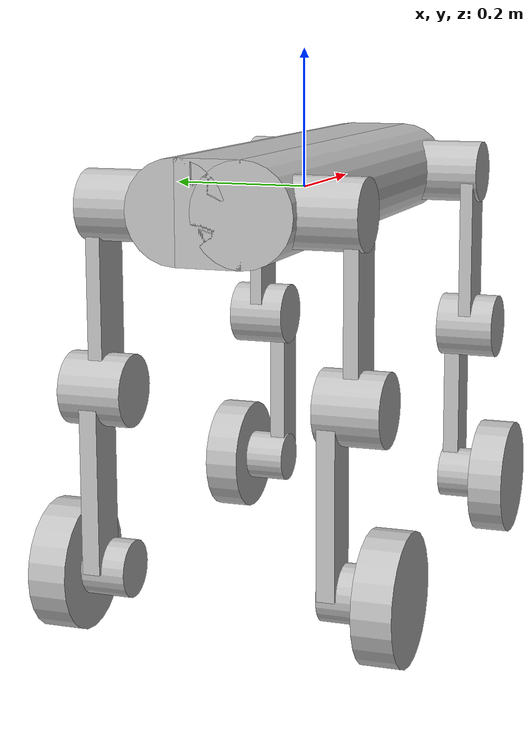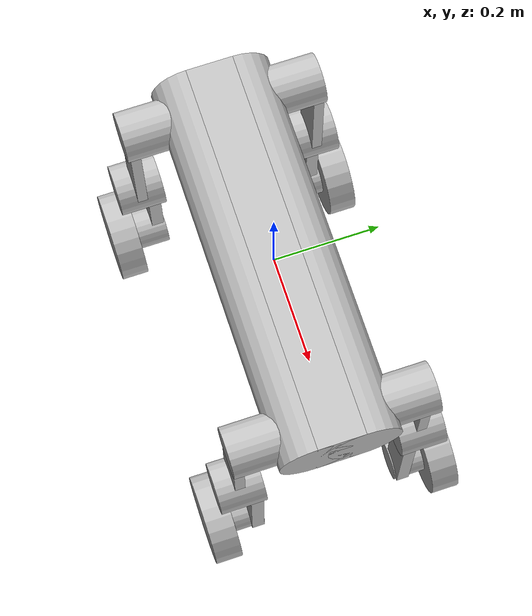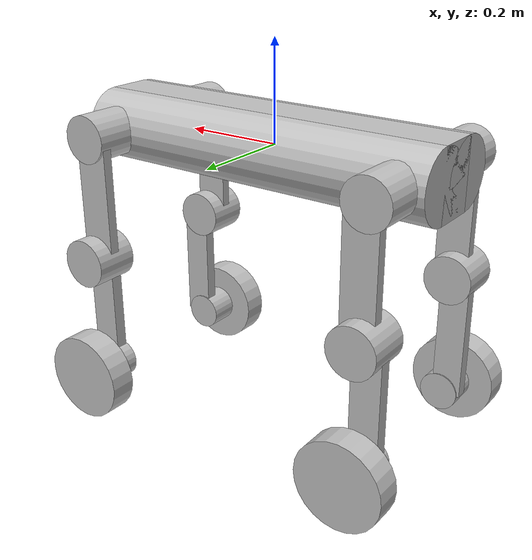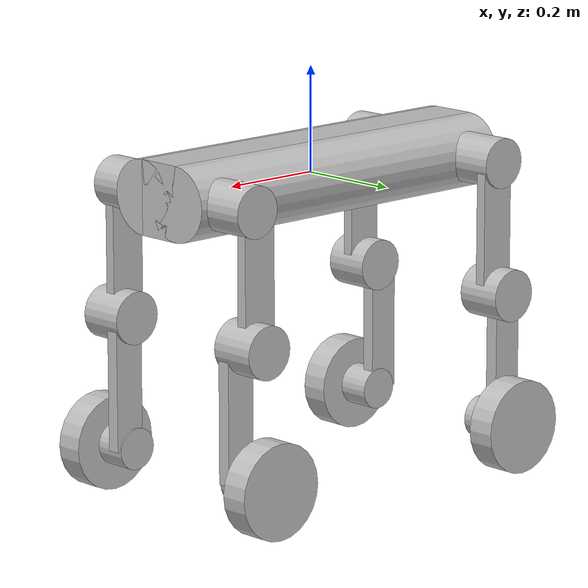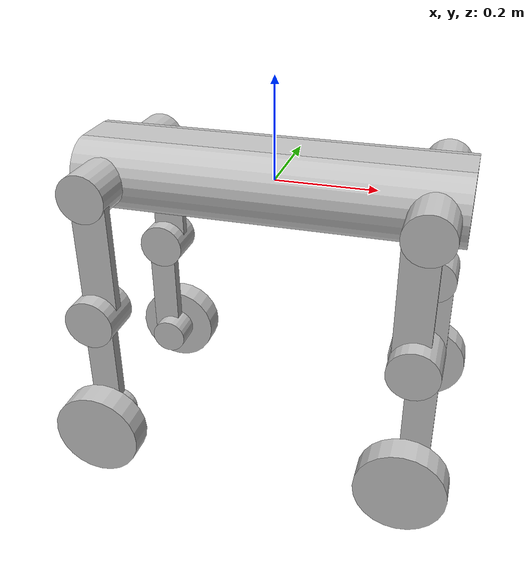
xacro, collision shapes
<?xml version="1.0"?>
<robot name="M20" xmlns:xacro="http://www.ros.org/wiki/xacro">
  <!-- 引入官方 M20 URDF 作为唯一内容 -->
  <xacro:include filename="$(find m20_official_description)/urdf/m20_official.urdf"/>
</robot>

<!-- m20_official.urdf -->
<robot name="M20">
    <!-- ===== 底盘 base_link ===== -->
    <link name="base_link">
        <inertial>
            <origin xyz="0.00355105878308153 0.0016507579200937 -0.00346462146571654" rpy="0 0 0"/>
            <mass value="15.882"/>
            <inertia ixx="0.0880787" ixy="0.001396" ixz="0.000111" iyy="0.533816" iyz="0.000519" izz="0.563915"/>
        </inertial>
        <visual>
            <origin xyz="0 0 0" rpy="0 0 0"/>
            <geometry>
                <mesh filename="package://m20_official_description/meshes/base_link.STL"/>
            </geometry>
            <material name="">
                <color rgba="0.752941176470588 0.752941176470588 0.752941176470588 1"/>
            </material>
        </visual>
        <collision>
            <origin xyz="0 0 0" rpy="0 0 0"/>
            <geometry>
                <box size="0.75 0.09 0.14"/>
            </geometry>
        </collision>
        <collision>
            <origin xyz="0 0.045 0" rpy="0 1.57079632 0"/>
            <geometry>
                <cylinder length="0.75" radius="0.07"/>
            </geometry>
        </collision>
        <collision>
            <origin xyz="0 -0.045 0" rpy="0 1.57079632 0"/>
            <geometry>
                <cylinder length="0.75" radius="0.07"/>
            </geometry>
        </collision>
    </link>
    <!-- ===== 左前腿：髋关节横滚 hipx ===== -->
    <link name="fl_hipx">
        <inertial>
            <origin xyz="-0.0111893129496933 0.00891693461032669 0.000405665689861192" rpy="0 0 0"/>
            <mass value="0.261359958476582"/>
            <inertia ixx="0.000186" ixy="0.000025" ixz="-0.000012" iyy="0.000371" iyz="-0.000008" izz="0.000288"/>
        </inertial>
        <visual>
            <origin xyz="0 0 0" rpy="0 0 0"/>
            <geometry>
                <mesh filename="package://m20_official_description/meshes/fl_hipx.STL"/>
            </geometry>
            <material name="">
                <color rgba="0.752941176470588 0.752941176470588 0.752941176470588 1"/>
            </material>
        </visual>
        <collision>
            <origin xyz="0 0.055 0" rpy="1.57079632 0 0"/>
            <geometry>
                <cylinder length="0.14" radius="0.048"/>
            </geometry>
        </collision>
    </link>
    <joint name="fl_hipx_joint" type="revolute">
        <origin xyz="0.3141 0.0685 0" rpy="0 0 0"/>
        <parent link="base_link"/>
        <child link="fl_hipx"/>
        <axis xyz="-1 0 0"/>
        <limit lower="-0.611" upper="0.436" effort="76.4" velocity="22.4"/>
    </joint>
    <!-- ===== 左前腿：髋关节俯仰 hipy ===== -->
    <link name="fl_hipy">
        <inertial>
            <origin xyz="-0.00199374763010413 0.0984389609045802 -0.130663565833427" rpy="0 0 0"/>
            <mass value="2.493"/>
            <inertia ixx="0.038859" ixy="-0.000023" ixz="-0.000037" iyy="0.038040" iyz="-0.005985" izz="0.003848"/>
        </inertial>
        <visual>
            <origin xyz="0 0 0" rpy="0 0 0"/>
            <geometry>
                <mesh filename="package://m20_official_description/meshes/fl_hipy.STL"/>
            </geometry>
            <material name="">
                <color rgba="0.752941176470588 0.752941176470588 0.752941176470588 1"/>
            </material>
        </visual>
        <collision>
            <origin xyz="-0.01 0.11 -0.125" rpy="0 0 0"/>
            <geometry>
                <box size="0.07 0.02 0.25"/>
            </geometry>
        </collision>
        <collision>
            <origin xyz="0 0.11 -0.25" rpy="1.57079632 0 0"/>
            <geometry>
                <cylinder length="0.09" radius="0.05"/>
            </geometry>
        </collision>
    </link>
    <joint name="fl_hipy_joint" type="revolute">
        <origin xyz="0 0 0" rpy="0 0 0"/>
        <parent link="fl_hipx"/>
        <child link="fl_hipy"/>
        <axis xyz="0 -1 0"/>
        <limit lower="-2.583" upper="2.286" effort="76.4" velocity="22.4"/>
    </joint>
    <!-- ===== 左前腿：膝关节 knee ===== -->
    <link name="fl_knee">
        <inertial>
            <origin xyz="0.00341916513259743 0.0026912421076368 -0.181265498605881" rpy="0 0 0"/>
            <mass value="1.26"/>
            <inertia ixx="0.012936" ixy="-0.000053" ixz="0.000226" iyy="0.013123" iyz="-0.001681" izz="0.001682"/>
        </inertial>
        <visual>
            <origin xyz="0 0 0" rpy="0 0 0"/>
            <geometry>
                <mesh filename="package://m20_official_description/meshes/fl_knee.STL"/>
            </geometry>
            <material name="">
                <color rgba="0.752941176470588 0.752941176470588 0.752941176470588 1"/>
            </material>
        </visual>
        <collision>
            <origin xyz="0.015 -0.015 -0.125" rpy="0 0 0"/>
            <geometry>
                <box size="0.06 0.025 0.25"/>
            </geometry>
        </collision>
        <collision>
            <origin xyz="0 0.02 -0.25" rpy="1.57079632 0 0"/>
            <geometry>
                <cylinder length="0.1" radius="0.04"/>
            </geometry>
        </collision>
    </link>
    <joint name="fl_knee_joint" type="revolute">
        <origin xyz="0 0.0984 -0.25" rpy="0 0 0"/>
        <parent link="fl_hipy"/>
        <child link="fl_knee"/>
        <axis xyz="0 -1 0"/>
        <limit lower="-2.792" upper="2.809" effort="76.4" velocity="22.4"/>
    </joint>
    <!-- ===== 左前腿：轮子 wheel ===== -->
    <link name="fl_wheel">
        <inertial>
            <origin xyz="-3.11398454355682E-07 0.000279001520740008 5.70329233673394E-07" rpy="0 0 0"/>
            <mass value="0.638"/>
            <inertia ixx="0.001535" ixy="0.0" ixz="0.0" iyy="0.002853" iyz="0.0" izz="0.001535"/>
        </inertial>
        <visual>
            <origin xyz="0 0 0" rpy="0 0 0"/>
            <geometry>
                <mesh filename="package://m20_official_description/meshes/fl_wheel.STL"/>
            </geometry>
            <material name="">
                <color rgba="0.752941176470588 0.752941176470588 0.752941176470588 1"/>
            </material>
        </visual>
        <collision>
            <origin xyz="0 0 0" rpy="1.57079632 0 0"/>
            <geometry>
                <cylinder length="0.054" radius="0.09"/>
            </geometry>
        </collision>
    </link>
    <joint name="fl_wheel_joint" type="continuous">
        <origin xyz="0 0.059676 -0.25" rpy="0 0 0"/>
        <parent link="fl_knee"/>
        <child link="fl_wheel"/>
        <axis xyz="0 -1 0"/>
        <limit effort="21.6" velocity="79.3"/>
    </joint>
    <!-- ===== 右前腿：fr_hipx / fr_hipy / fr_knee / fr_wheel（与左前对称） ===== -->
    <link name="fr_hipx">
        <inertial>
            <origin xyz="-0.0110900940309543 -0.0087503473771439 0.000521421017057358" rpy="0 0 0"/>
            <mass value="0.261359958476582"/>
            <inertia ixx="0.000186" ixy="-0.000026" ixz="-0.000012" iyy="0.000371" iyz="0.000008" izz="0.000288"/>
        </inertial>
        <visual>
            <origin xyz="0 0 0" rpy="0 0 0"/>
            <geometry>
                <mesh filename="package://m20_official_description/meshes/fr_hipx.STL"/>
            </geometry>
            <material name="">
                <color rgba="0.752941176470588 0.752941176470588 0.752941176470588 1"/>
            </material>
        </visual>
        <collision>
            <origin xyz="0 -0.055 0" rpy="1.57079632 0 0"/>
            <geometry>
                <cylinder length="0.14" radius="0.048"/>
            </geometry>
        </collision>
    </link>
    <joint name="fr_hipx_joint" type="revolute">
        <origin xyz="0.3141 -0.0685 0" rpy="0 0 0"/>
        <parent link="base_link"/>
        <child link="fr_hipx"/>
        <axis xyz="-1 0 0"/>
        <limit lower="-0.436" upper="0.611" effort="76.4" velocity="22.4"/>
    </joint>
    <link name="fr_hipy">
        <inertial>
            <origin xyz="-0.00229991904853988 -0.0989709441053532 -0.130925037640537" rpy="0 0 0"/>
            <mass value="2.493"/>
            <inertia ixx="0.039277" ixy="0.000005" ixz="-0.000063" iyy="0.038485" iyz="0.005970" izz="0.003921"/>
        </inertial>
        <visual>
            <origin xyz="0 0 0" rpy="0 0 0"/>
            <geometry>
                <mesh filename="package://m20_official_description/meshes/fr_hipy.STL"/>
            </geometry>
            <material name="">
                <color rgba="0.752941176470588 0.752941176470588 0.752941176470588 1"/>
            </material>
        </visual>
        <collision>
            <origin xyz="-0.01 -0.11 -0.125" rpy="0 0 0"/>
            <geometry>
                <box size="0.07 0.02 0.25"/>
            </geometry>
        </collision>
        <collision>
            <origin xyz="0 -0.11 -0.25" rpy="1.57079632 0 0"/>
            <geometry>
                <cylinder length="0.09" radius="0.05"/>
            </geometry>
        </collision>
    </link>
    <joint name="fr_hipy_joint" type="revolute">
        <origin xyz="0 0 0" rpy="0 0 0"/>
        <parent link="fr_hipx"/>
        <child link="fr_hipy"/>
        <axis xyz="0 -1 0"/>
        <limit lower="-2.583" upper="2.286" effort="76.4" velocity="22.4"/>
    </joint>
    <link name="fr_knee">
        <inertial>
            <origin xyz="0.0035494546955584 -0.002478843181213 -0.180089236444296" rpy="0 0 0"/>
            <mass value="1.26"/>
            <inertia ixx="0.012936" ixy="0.000053" ixz="0.000226" iyy="0.013123" iyz="0.001681" izz="0.001283"/>
        </inertial>
        <visual>
            <origin xyz="0 0 0" rpy="0 0 0"/>
            <geometry>
                <mesh filename="package://m20_official_description/meshes/fr_knee.STL"/>
            </geometry>
            <material name="">
                <color rgba="0.752941176470588 0.752941176470588 0.752941176470588 1"/>
            </material>
        </visual>
        <collision>
            <origin xyz="0.015 0.015 -0.125" rpy="0 0 0"/>
            <geometry>
                <box size="0.06 0.025 0.25"/>
            </geometry>
        </collision>
        <collision>
            <origin xyz="0 -0.02 -0.25" rpy="1.57079632 0 0"/>
            <geometry>
                <cylinder length="0.1" radius="0.04"/>
            </geometry>
        </collision>
    </link>
    <joint name="fr_knee_joint" type="revolute">
        <origin xyz="0 -0.0984 -0.25" rpy="0 0 0"/>
        <parent link="fr_hipy"/>
        <child link="fr_knee"/>
        <axis xyz="0 -1 0"/>
        <limit lower="-2.792" upper="2.809" effort="76.4" velocity="22.4"/>
    </joint>
    <link name="fr_wheel">
        <inertial>
            <origin xyz="-6.4732687427016E-07 -0.000279012463466427 -4.62420470803693E-08" rpy="0 0 0"/>
            <mass value="0.638"/>
            <inertia ixx="0.001535" ixy="0.0" ixz="0.0" iyy="0.002853" iyz="0.0" izz="0.001535"/>
        </inertial>
        <visual>
            <origin xyz="0 0 0" rpy="0 0 0"/>
            <geometry>
                <mesh filename="package://m20_official_description/meshes/fr_wheel.STL"/>
            </geometry>
            <material name="">
                <color rgba="0.752941176470588 0.752941176470588 0.752941176470588 1"/>
            </material>
        </visual>
        <collision>
            <origin xyz="0 0 0" rpy="1.57079632 0 0"/>
            <geometry>
                <cylinder length="0.054" radius="0.09"/>
            </geometry>
        </collision>
    </link>
    <joint name="fr_wheel_joint" type="continuous">
        <origin xyz="0 -0.059676 -0.25" rpy="0 0 0"/>
        <parent link="fr_knee"/>
        <child link="fr_wheel"/>
        <axis xyz="0 -1 0"/>
        <limit effort="21.6" velocity="79.3"/>
    </joint>
    <!-- ===== 左后腿：hl_hipx / hl_hipy / hl_knee / hl_wheel（与左前对称，位于 -X 侧） ===== -->
    <link name="hl_hipx">
        <inertial>
            <origin xyz="0.0110900940233134 0.00875014035040743 0.000524883746291591" rpy="0 0 0"/>
            <mass value="0.261359958476582"/>
            <inertia ixx="0.000186" ixy="-0.000025" ixz="0.000012" iyy="0.000371" iyz="-0.000008" izz="0.000288"/>
        </inertial>
        <visual>
            <origin xyz="0 0 0" rpy="0 0 0"/>
            <geometry>
                <mesh filename="package://m20_official_description/meshes/hl_hipx.STL"/>
            </geometry>
            <material name="">
                <color rgba="0.752941176470588 0.752941176470588 0.752941176470588 1"/>
            </material>
        </visual>
        <collision>
            <origin xyz="0 0.055 0" rpy="1.57079632 0 0"/>
            <geometry>
                <cylinder length="0.14" radius="0.048"/>
            </geometry>
        </collision>
    </link>
    <joint name="hl_hipx_joint" type="revolute">
        <origin xyz="-0.3141 0.0685 0" rpy="0 0 0"/>
        <parent link="base_link"/>
        <child link="hl_hipx"/>
        <axis xyz="-1 0 0"/>
        <limit lower="-0.611" upper="0.436" effort="76.4" velocity="22.4"/>
    </joint>
    <link name="hl_hipy">
        <inertial>
            <origin xyz="0.00204343366218146 0.0990227473833045 -0.13069726691312" rpy="0 0 0"/>
            <mass value="2.493"/>
            <inertia ixx="0.039361" ixy="0.000029" ixz="0.000009" iyy="0.038554" iyz="-0.006001" izz="0.003914"/>
        </inertial>
        <visual>
            <origin xyz="0 0 0" rpy="0 0 0"/>
            <geometry>
                <mesh filename="package://m20_official_description/meshes/hl_hipy.STL"/>
            </geometry>
            <material name="">
                <color rgba="0.752941176470588 0.752941176470588 0.752941176470588 1"/>
            </material>
        </visual>
        <collision>
            <origin xyz="0.01 0.11 -0.125" rpy="0 0 0"/>
            <geometry>
                <box size="0.07 0.02 0.25"/>
            </geometry>
        </collision>
        <collision>
            <origin xyz="0 0.11 -0.25" rpy="1.57079632 0 0"/>
            <geometry>
                <cylinder length="0.09" radius="0.05"/>
            </geometry>
        </collision>
    </link>
    <joint name="hl_hipy_joint" type="revolute">
        <origin xyz="0 0 0" rpy="0 0 0"/>
        <parent link="hl_hipx"/>
        <child link="hl_hipy"/>
        <axis xyz="0 -1 0"/>
        <limit lower="-2.286" upper="2.583" effort="76.4" velocity="22.4"/>
    </joint>
    <link name="hl_knee">
        <inertial>
            <origin xyz="-0.00354945209738589 0.00247884637205834 -0.180089257150601" rpy="0 0 0"/>
            <mass value="1.26"/>
            <inertia ixx="0.012936" ixy="0.000053" ixz="-0.000226" iyy="0.013123" iyz="-0.001681" izz="0.001283"/>
        </inertial>
        <visual>
            <origin xyz="0 0 0" rpy="0 0 0"/>
            <geometry>
                <mesh filename="package://m20_official_description/meshes/hl_knee.STL"/>
            </geometry>
            <material name="">
                <color rgba="0.752941176470588 0.752941176470588 0.752941176470588 1"/>
            </material>
        </visual>
        <collision>
            <origin xyz="-0.015 0.015 -0.125" rpy="0 0 0"/>
            <geometry>
                <box size="0.06 0.025 0.25"/>
            </geometry>
        </collision>
        <collision>
            <origin xyz="0 0.02 -0.25" rpy="1.57079632 0 0"/>
            <geometry>
                <cylinder length="0.1" radius="0.04"/>
            </geometry>
        </collision>
    </link>
    <joint name="hl_knee_joint" type="revolute">
        <origin xyz="0 0.0984 -0.25" rpy="0 0 0"/>
        <parent link="hl_hipy"/>
        <child link="hl_knee"/>
        <axis xyz="0 -1 0"/>
        <limit lower="-2.809" upper="2.792" effort="76.4" velocity="22.4"/>
    </joint>
    <link name="hl_wheel">
        <inertial>
            <origin xyz="-6.07889369508285E-07 0.000279009097070765 2.10489879304276E-07" rpy="0 0 0"/>
            <mass value="0.638"/>
            <inertia ixx="0.001535" ixy="0.0" ixz="0.0" iyy="0.002853" iyz="0.0" izz="0.001535"/>
        </inertial>
        <visual>
            <origin xyz="0 0 0" rpy="0 0 0"/>
            <geometry>
                <mesh filename="package://m20_official_description/meshes/hl_wheel.STL"/>
            </geometry>
            <material name="">
                <color rgba="0.752941176470588 0.752941176470588 0.752941176470588 1"/>
            </material>
        </visual>
        <collision>
            <origin xyz="0 0 0" rpy="1.57079632 0 0"/>
            <geometry>
                <cylinder length="0.054" radius="0.09"/>
            </geometry>
        </collision>
    </link>
    <joint name="hl_wheel_joint" type="continuous">
        <origin xyz="0 0.059676 -0.25" rpy="0 0 0"/>
        <parent link="hl_knee"/>
        <child link="hl_wheel"/>
        <axis xyz="0 -1 0"/>
        <limit effort="21.6" velocity="79.3"/>
    </joint>
    <!-- ===== 右后腿：hr_hipx / hr_hipy / hr_knee / hr_wheel（与右前对称，位于 -X 侧） ===== -->
    <link name="hr_hipx">
        <inertial>
            <origin xyz="0.0110901558226165 -0.00875011717083631 0.000524936954718227" rpy="0 0 0"/>
            <mass value="0.261359958476582"/>
            <inertia ixx="0.000186" ixy="0.000025" ixz="0.000012" iyy="0.000371" iyz="0.000008" izz="0.000288"/>
        </inertial>
        <visual>
            <origin xyz="0 0 0" rpy="0 0 0"/>
            <geometry>
                <mesh filename="package://m20_official_description/meshes/hr_hipx.STL"/>
            </geometry>
            <material name="">
                <color rgba="0.752941176470588 0.752941176470588 0.752941176470588 1"/>
            </material>
        </visual>
        <collision>
            <origin xyz="0 -0.055 0" rpy="1.57079632 0 0"/>
            <geometry>
                <cylinder length="0.14" radius="0.048"/>
            </geometry>
        </collision>
    </link>
    <joint name="hr_hipx_joint" type="revolute">
        <origin xyz="-0.3141 -0.0685 0" rpy="0 0 0"/>
        <parent link="base_link"/>
        <child link="hr_hipx"/>
        <axis xyz="-1 0 0"/>
        <limit lower="-0.436" upper="0.611" effort="76.4" velocity="22.4"/>
    </joint>
    <link name="hr_hipy">
        <inertial>
            <origin xyz="0.00199199678434109 -0.0983704174694303 -0.13056065751366" rpy="0 0 0"/>
            <mass value="2.493"/>
            <inertia ixx="0.038878" ixy="-0.000022" ixz="0.000034" iyy="0.038053" iyz="0.005995" izz="0.003854"/>
        </inertial>
        <visual>
            <origin xyz="0 0 0" rpy="0 0 0"/>
            <geometry>
                <mesh filename="package://m20_official_description/meshes/hr_hipy.STL"/>
            </geometry>
            <material name="">
                <color rgba="0.752941176470588 0.752941176470588 0.752941176470588 1"/>
            </material>
        </visual>
        <collision>
            <origin xyz="0.01 -0.11 -0.125" rpy="0 0 0"/>
            <geometry>
                <box size="0.07 0.02 0.25"/>
            </geometry>
        </collision>
        <collision>
            <origin xyz="0 -0.11 -0.25" rpy="1.57079632 0 0"/>
            <geometry>
                <cylinder length="0.09" radius="0.05"/>
            </geometry>
        </collision>
    </link>
    <joint name="hr_hipy_joint" type="revolute">
        <origin xyz="0 0 0" rpy="0 0 0"/>
        <parent link="hr_hipx"/>
        <child link="hr_hipy"/>
        <axis xyz="0 -1 0"/>
        <limit lower="-2.286" upper="2.583" effort="76.4" velocity="22.4"/>
    </joint>
    <link name="hr_knee">
        <inertial>
            <origin xyz="-0.00341053036115846 -0.0027020185369851 -0.181287492263963" rpy="0 0 0"/>
            <mass value="1.26"/>
            <inertia ixx="0.012936" ixy="-0.000053" ixz="-0.000226" iyy="0.013123" iyz="0.001681" izz="0.001283"/>
        </inertial>
        <visual>
            <origin xyz="0 0 0" rpy="0 0 0"/>
            <geometry>
                <mesh filename="package://m20_official_description/meshes/hr_knee.STL"/>
            </geometry>
            <material name="">
                <color rgba="0.752941176470588 0.752941176470588 0.752941176470588 1"/>
            </material>
        </visual>
        <collision>
            <origin xyz="-0.015 0.015 -0.125" rpy="0 0 0"/>
            <geometry>
                <box size="0.06 0.025 0.25"/>
            </geometry>
        </collision>
        <collision>
            <origin xyz="0 -0.02 -0.25" rpy="1.57079632 0 0"/>
            <geometry>
                <cylinder length="0.1" radius="0.04"/>
            </geometry>
        </collision>
    </link>
    <joint name="hr_knee_joint" type="revolute">
        <origin xyz="0 -0.0984 -0.25" rpy="0 0 0"/>
        <parent link="hr_hipy"/>
        <child link="hr_knee"/>
        <axis xyz="0 -1 0"/>
        <limit lower="-2.809" upper="2.792" effort="76.4" velocity="22.4"/>
    </joint>
    <link name="hr_wheel">
        <inertial>
            <origin xyz="6.09746291457824E-07 -0.00027900886004309 2.0131377032051E-07" rpy="0 0 0"/>
            <mass value="0.638"/>
            <inertia ixx="0.001535" ixy="0.0" ixz="0.0" iyy="0.002853" iyz="0.0" izz="0.001535"/>
        </inertial>
        <visual>
            <origin xyz="0 0 0" rpy="0 0 0"/>
            <geometry>
                <mesh filename="package://m20_official_description/meshes/hr_wheel.STL"/>
            </geometry>
            <material name="">
                <color rgba="0.752941176470588 0.752941176470588 0.752941176470588 1"/>
            </material>
        </visual>
        <collision>
            <origin xyz="0 0 0" rpy="1.57079632 0 0"/>
            <geometry>
                <cylinder length="0.054" radius="0.09"/>
            </geometry>
        </collision>
    </link>
    <joint name="hr_wheel_joint" type="continuous">
        <origin xyz="0 -0.059676 -0.25" rpy="0 0 0"/>
        <parent link="hr_knee"/>
        <child link="hr_wheel"/>
        <axis xyz="0 -1 0"/>
        <limit effort="21.6" velocity="79.3"/>
    </joint>
</robot>
